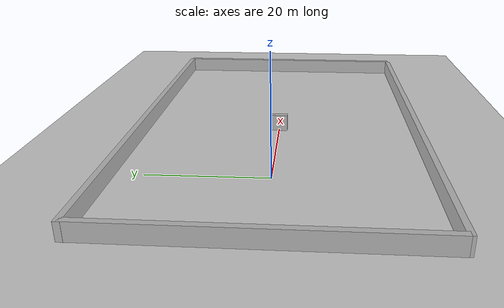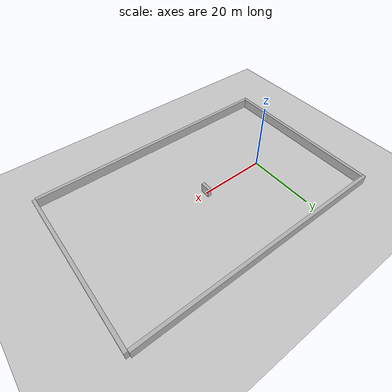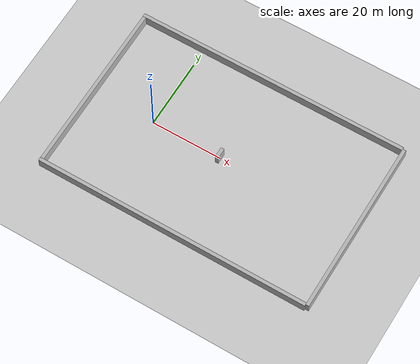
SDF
<sdf version="1.6">
  <world name="default">
    <light name='sun' type='directional'>
      <cast_shadows>1</cast_shadows>
      <pose>0 0 10 0 -0 0</pose>
      <diffuse>0.8 0.8 0.8 1</diffuse>
      <specular>0.2 0.2 0.2 1</specular>
      <attenuation>
        <range>1000</range>
        <constant>0.9</constant>
        <linear>0.01</linear>
        <quadratic>0.001</quadratic>
      </attenuation>
      <direction>-0.5 0.1 -0.9</direction>
    </light>
    <light name='reward1' type='spot'>
      <cast_shadows>0</cast_shadows>
      <pose>5 0 1 0 0 0</pose>
      <diffuse>1 1 1 1</diffuse>
      <specular>0.1 0.1 0.1 1</specular>
      <direction>0 0 -1</direction>
    </light>
    <light name='reward2' type='spot'>
      <cast_shadows>0</cast_shadows>
      <pose>10 0 1 0 0 0</pose>
      <diffuse>1 1 1 1</diffuse>
      <specular>0.1 0.1 0.1 1</specular>
      <direction>0 0 -1</direction>
    </light>
    <light name='reward3.0' type='spot'>
      <cast_shadows>0</cast_shadows>
      <pose>12.5 6.25 1 0 0 0</pose>
      <diffuse>1 1 1 1</diffuse>
      <specular>0.1 0.1 0.1 1</specular>
      <direction>0 0 -1</direction>
    </light>
    <light name='reward3.5' type='spot'>
      <cast_shadows>0</cast_shadows>
      <pose>12.5 -6.25 1 0 0 0</pose>
      <diffuse>1 1 1 1</diffuse>
      <specular>0.1 0.1 0.1 1</specular>
      <direction>0 0 -1</direction>
    </light>
        <light name='reward3.1' type='spot'>
      <cast_shadows>0</cast_shadows>
      <pose>20 12.5 1 0 0 0</pose>
      <diffuse>1 1 1 1</diffuse>
      <specular>0.1 0.1 0.1 1</specular>
      <direction>0 0 -1</direction>
    </light>
    <light name='reward3.6' type='spot'>
      <cast_shadows>0</cast_shadows>
      <pose>20 -12.5 1 0 0 0</pose>
      <diffuse>1 1 1 1</diffuse>
      <specular>0.1 0.1 0.1 1</specular>
      <direction>0 0 -1</direction>
    </light>
    <light name='reward3.2' type='spot'>
      <cast_shadows>0</cast_shadows>
      <pose>25 6.25 1 0 0 0</pose>
      <diffuse>1 1 1 1</diffuse>
      <specular>0.1 0.1 0.1 1</specular>
      <direction>0 0 -1</direction>
    </light>
    <light name='reward3.7' type='spot'>
      <cast_shadows>0</cast_shadows>
      <pose>25 -6.25 1 0 0 0</pose>
      <diffuse>1 1 1 1</diffuse>
      <specular>0.1 0.1 0.1 1</specular>
      <direction>0 0 -1</direction>
    </light>
    <light name='reward4' type='spot'>
      <cast_shadows>0</cast_shadows>
      <pose>27.5 0 1 0 0 0</pose>
      <diffuse>1 1 1 1</diffuse>
      <specular>0.1 0.1 0.1 1</specular>
      <direction>0 0 -1</direction>
    </light>
    <light name='reward5' type='spot'>
      <cast_shadows>0</cast_shadows>
      <pose>30 0 1 0 0 0</pose>
      <diffuse>1 1 1 1</diffuse>
      <specular>0.1 0.1 0.1 1</specular>
      <direction>0 0 -1</direction>
    </light>
    <light name='reward6' type='spot'>
      <cast_shadows>0</cast_shadows>
      <pose>35 0 1 0 0 0</pose>
      <diffuse>1 1 1 1</diffuse>
      <specular>0.1 0.1 0.1 1</specular>
      <direction>0 0 -1</direction>
    </light>
    <light name='reward7' type='spot'>
      <cast_shadows>0</cast_shadows>
      <pose>40 0 1 0 0 0</pose>
      <diffuse>1 1 1 1</diffuse>
      <specular>0.1 0.1 0.1 1</specular>
      <direction>0 0 -1</direction>
    </light>
    <light name='reward8' type='spot'>
      <cast_shadows>0</cast_shadows>
      <pose>45 0 1 0 0 0</pose>
      <diffuse>1 1 1 1</diffuse>
      <specular>0.1 0.1 0.1 1</specular>
      <direction>0 0 -1</direction>
    </light>
    <model name='ground_plane'>
      <static>1</static>
      <link name='link'>
        <collision name='collision'>
          <geometry>
            <plane>
              <normal>0 0 1</normal>
              <size>100 100</size>
            </plane>
          </geometry>
          <surface>
            <friction>
              <ode>
                <mu>100</mu>
                <mu2>50</mu2>
              </ode>
            </friction>
            <bounce/>
            <contact>
              <ode/>
            </contact>
          </surface>
          <max_contacts>10</max_contacts>
        </collision>
        <visual name='visual'>
          <cast_shadows>0</cast_shadows>
          <geometry>
            <plane>
              <normal>0 0 1</normal>
              <size>100 100</size>
            </plane>
          </geometry>
          <material>
            <script>
              <uri>file://media/materials/scripts/gazebo.material</uri>
              <name>Gazebo/Grey</name>
            </script>
          </material>
        </visual>
        <velocity_decay>
          <linear>0</linear>
          <angular>0</angular>
        </velocity_decay>
        <self_collide>0</self_collide>
        <kinematic>0</kinematic>
        <gravity>1</gravity>
      </link>
    </model>
    <physics name = 'defualt physics' default = '0' type='ode'>
      <max_step_size>0.001</max_step_size>
      <real_time_factor>1</real_time_factor>
      <real_time_update_rate>1000</real_time_update_rate>
      <gravity>0 0 -9.8</gravity>
    </physics>
    <scene>
      <ambient>0.4 0.4 0.4 1</ambient>
      <background>0.7 0.7 0.7 1</background>
      <shadows>1</shadows>
    </scene>
    <spherical_coordinates>
      <surface_model>EARTH_WGS84</surface_model>
      <latitude_deg>0</latitude_deg>
      <longitude_deg>0</longitude_deg>
      <elevation>0</elevation>
      <heading_deg>0</heading_deg>
    </spherical_coordinates>

    <model name='brick_box_3x1x3'>
      <static>1</static>
      <link name='chassis'>
        <pose>0 0 1.5 0 0 1.57</pose>
        <collision name='collision'>
          <geometry>
            <box>
              <size>3 1 3</size>
            </box>
          </geometry>
          <max_contacts>10</max_contacts>
          <surface>
            <bounce/>
            <friction>
              <ode/>
            </friction>
            <contact>
              <ode/>
            </contact>
          </surface>
        </collision>
        <visual name='visual'>
          <geometry>
            <mesh>
              <uri>model://brick_box_3x1x3/meshes/simple_box.dae</uri>
              <scale>3 1 3</scale>
            </mesh>
          </geometry>
          <material>
            <script>
              <uri>model://brick_box_3x1x3/materials/scripts</uri>
              <uri>model://brick_box_3x1x3/materials/textures</uri>
              <name>BrickBox/Diffuse</name>
            </script>
          </material>
        </visual>
        <velocity_decay>
          <linear>0</linear>
          <angular>0</angular>
        </velocity_decay>
        <self_collide>0</self_collide>
        <kinematic>0</kinematic>
        <gravity>1</gravity>
      </link>
      <pose>20 0 0 0 0 0</pose>
    </model>
    <model name='brick_box_3x1x3_0'>
      <static>1</static>
      <link name='chassis'>
        <pose>0 0 1.5 0 -0 0</pose>
        <collision name='collision'>
          <geometry>
            <box>
              <size>50 1 3</size>
            </box>
          </geometry>
          <max_contacts>10</max_contacts>
          <surface>
            <bounce/>
            <friction>
              <ode/>
            </friction>
            <contact>
              <ode/>
            </contact>
          </surface>
        </collision>
        <visual name='visual'>
          <geometry>
            <mesh>
              <uri>model://brick_box_3x1x3/meshes/simple_box.dae</uri>
              <scale>50 1 3</scale>
            </mesh>
          </geometry>
          <material>
            <script>
              <uri>model://brick_box_3x1x3/materials/scripts</uri>
              <uri>model://brick_box_3x1x3/materials/textures</uri>
              <name>BrickBox/Diffuse</name>
            </script>
          </material>
        </visual>
        <velocity_decay>
          <linear>0</linear>
          <angular>0</angular>
        </velocity_decay>
        <self_collide>0</self_collide>
        <kinematic>0</kinematic>
        <gravity>1</gravity>
      </link>
      <pose>60 0 0 0 0 1.57</pose>
    </model>
    <model name='brick_box_3x1x3_2'>
      <static>1</static>
      <link name='chassis'>
        <pose>0 0 1.5 0 -0 0</pose>
        <collision name='collision'>
          <geometry>
            <box>
              <size>78 1 3</size>
            </box>
          </geometry>
          <max_contacts>10</max_contacts>
          <surface>
            <bounce/>
            <friction>
              <ode/>
            </friction>
            <contact>
              <ode/>
            </contact>
          </surface>
        </collision>
        <visual name='visual'>
          <geometry>
            <mesh>
              <uri>model://brick_box_3x1x3/meshes/simple_box.dae</uri>
              <scale>78 1 3</scale>
            </mesh>
          </geometry>
          <material>
            <script>
              <uri>model://brick_box_3x1x3/materials/scripts</uri>
              <uri>model://brick_box_3x1x3/materials/textures</uri>
              <name>BrickBox/Diffuse</name>
            </script>
          </material>
        </visual>
        <velocity_decay>
          <linear>0</linear>
          <angular>0</angular>
        </velocity_decay>
        <self_collide>0</self_collide>
        <kinematic>0</kinematic>
        <gravity>1</gravity>
      </link>
      <pose>20.5 25 0 0 0 0</pose>
    </model>

    <model name='brick_box_3x1x3_10'>
      <static>1</static>
      <link name='chassis'>
        <pose>0 0 1.5 0 -0 0</pose>
        <collision name='collision'>
          <geometry>
            <box>
              <size>50 1 3</size>
            </box>
          </geometry>
          <max_contacts>10</max_contacts>
          <surface>
            <bounce/>
            <friction>
              <ode/>
            </friction>
            <contact>
              <ode/>
            </contact>
          </surface>
        </collision>
        <visual name='visual'>
          <geometry>
            <mesh>
              <uri>model://brick_box_3x1x3/meshes/simple_box.dae</uri>
              <scale>50 1 3</scale>
            </mesh>
          </geometry>
          <material>
            <script>
              <uri>model://brick_box_3x1x3/materials/scripts</uri>
              <uri>model://brick_box_3x1x3/materials/textures</uri>
              <name>BrickBox/Diffuse</name>
            </script>
          </material>
        </visual>
        <velocity_decay>
          <linear>0</linear>
          <angular>0</angular>
        </velocity_decay>
        <self_collide>0</self_collide>
        <kinematic>0</kinematic>
        <gravity>1</gravity>
      </link>
      <pose>-18 0 0 0 0 1.57</pose>
    </model>
    <model name='brick_box_3x1x3_11'>
      <static>1</static>
      <link name='chassis'>
        <pose>0 0 1.5 0 -0 0</pose>
        <collision name='collision'>
          <geometry>
            <box>
              <size>78 1 3</size>
            </box>
          </geometry>
          <max_contacts>10</max_contacts>
          <surface>
            <bounce/>
            <friction>
              <ode/>
            </friction>
            <contact>
              <ode/>
            </contact>
          </surface>
        </collision>
        <visual name='visual'>
          <geometry>
            <mesh>
              <uri>model://brick_box_3x1x3/meshes/simple_box.dae</uri>
              <scale>78 1 3</scale>
            </mesh>
          </geometry>
          <material>
            <script>
              <uri>model://brick_box_3x1x3/materials/scripts</uri>
              <uri>model://brick_box_3x1x3/materials/textures</uri>
              <name>BrickBox/Diffuse</name>
            </script>
          </material>
        </visual>
        <velocity_decay>
          <linear>0</linear>
          <angular>0</angular>
        </velocity_decay>
        <self_collide>0</self_collide>
        <kinematic>0</kinematic>
        <gravity>1</gravity>
      </link>
      <pose>20.5 -25 0 0 0 0</pose>
    </model>
    <gui fullscreen='0'>
      <camera name='user_camera'>
        <pose>-81.6641 57.3953 316.554 0 1.33737 -0.23823</pose>
        <view_controller>orbit</view_controller>
      </camera>
    </gui>
  </world>
</sdf>
